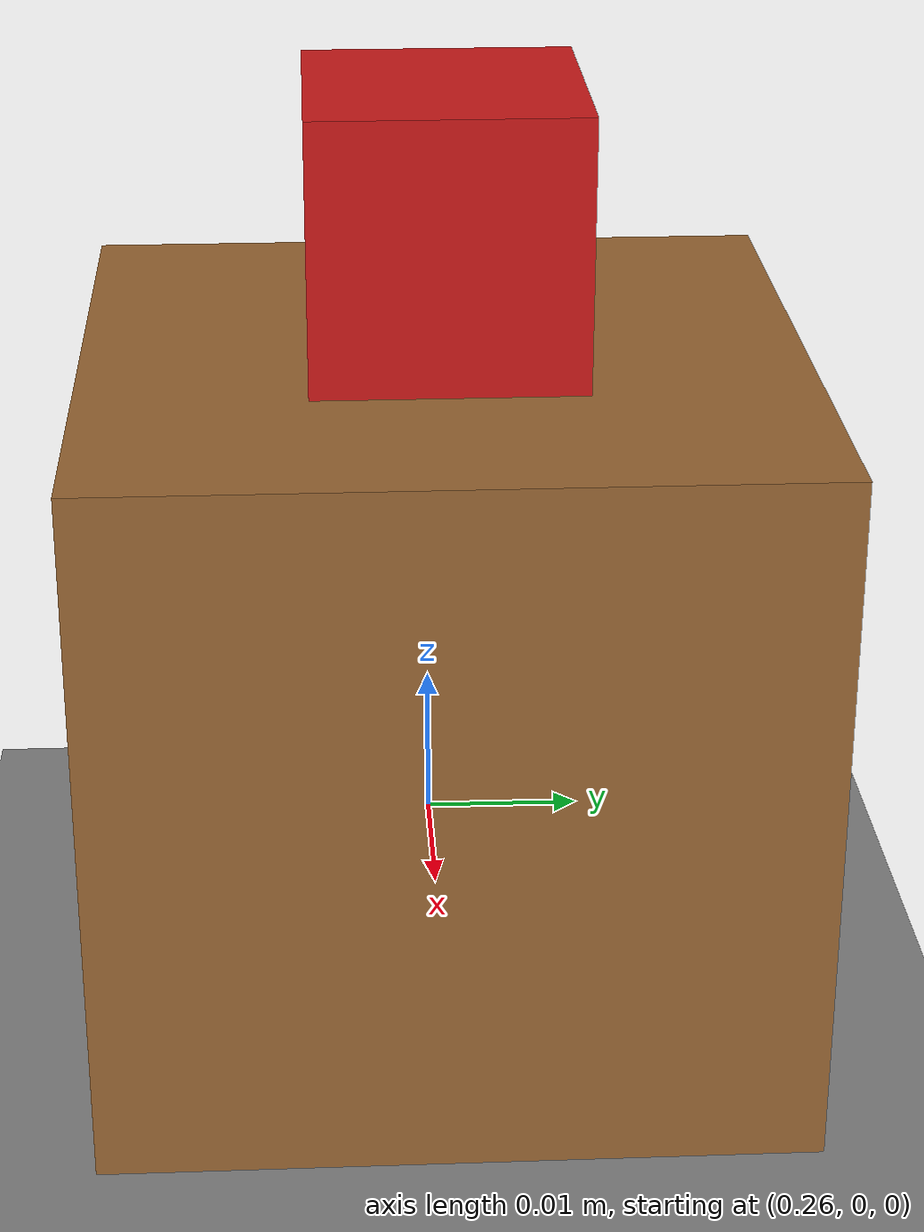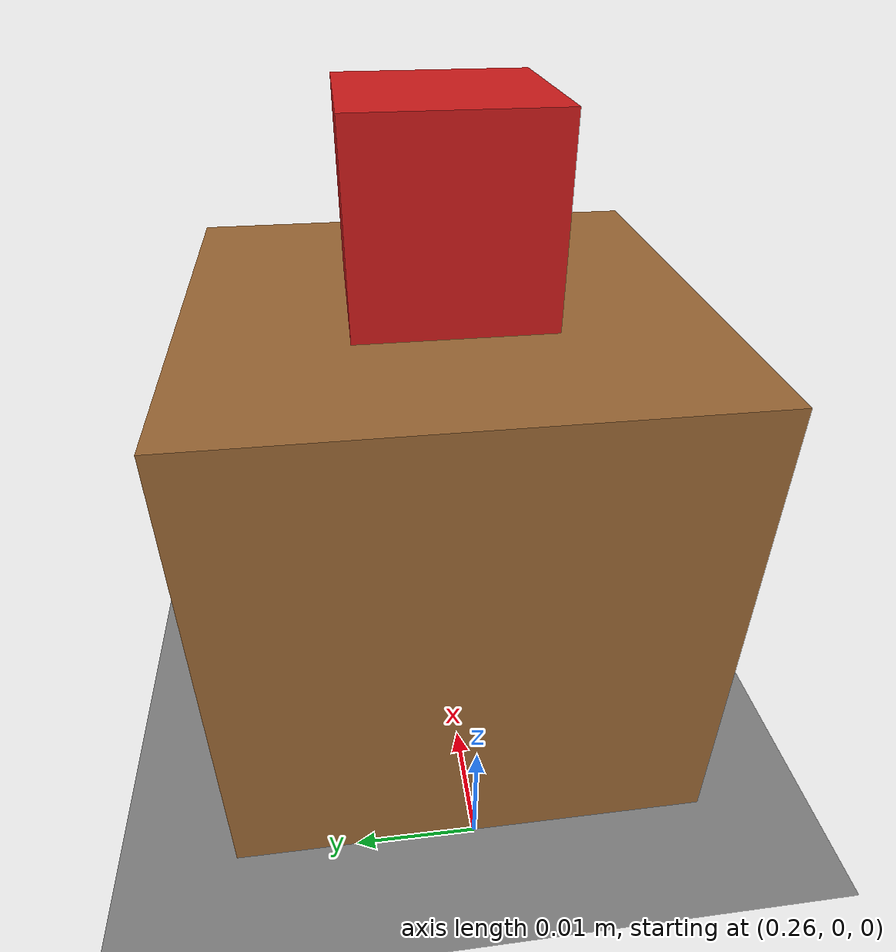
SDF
<?xml version="1.0"?>
<sdf version="1.6">
  <world name="default">
    <physics name="1ms" type="ignored">
      <max_step_size>0.001</max_step_size>
      <real_time_factor>1.0</real_time_factor>
    </physics>

    <gui fullscreen="0">

      <!-- 3D scene -->
      <plugin filename="MinimalScene" name="3D View">
        <gz-gui>
          <title>3D View</title>
          <property type="bool" key="showTitleBar">false</property>
          <property type="string" key="state">docked</property>
        </gz-gui>

        <engine>ogre2</engine>
        <scene>scene</scene>
        <ambient_light>0.4 0.4 0.4</ambient_light>
        <background_color>0.8 0.8 0.8</background_color>
        <camera_pose>0 -0.8 0.6 0 0.5 1.57</camera_pose>
        <camera_clip>
          <near>0.25</near>
          <far>25000</far>
        </camera_clip>
      </plugin>

      <!-- Plugins that add functionality to the scene -->
      <plugin filename="EntityContextMenuPlugin" name="Entity context menu">
        <gz-gui>
          <property key="state" type="string">floating</property>
          <property key="width" type="double">5</property>
          <property key="height" type="double">5</property>
          <property key="showTitleBar" type="bool">false</property>
        </gz-gui>
      </plugin>
      <plugin filename="GzSceneManager" name="Scene Manager">
        <gz-gui>
          <property key="resizable" type="bool">false</property>
          <property key="width" type="double">5</property>
          <property key="height" type="double">5</property>
          <property key="state" type="string">floating</property>
          <property key="showTitleBar" type="bool">false</property>
        </gz-gui>
      </plugin>
      <plugin filename="InteractiveViewControl" name="Interactive view control">
        <gz-gui>
          <property key="resizable" type="bool">false</property>
          <property key="width" type="double">5</property>
          <property key="height" type="double">5</property>
          <property key="state" type="string">floating</property>
          <property key="showTitleBar" type="bool">false</property>
        </gz-gui>
      </plugin>
      <plugin filename="CameraTracking" name="Camera Tracking">
        <gz-gui>
          <property key="resizable" type="bool">false</property>
          <property key="width" type="double">5</property>
          <property key="height" type="double">5</property>
          <property key="state" type="string">floating</property>
          <property key="showTitleBar" type="bool">false</property>
        </gz-gui>
      </plugin>
      <plugin filename="MarkerManager" name="Marker manager">
        <gz-gui>
          <property key="resizable" type="bool">false</property>
          <property key="width" type="double">5</property>
          <property key="height" type="double">5</property>
          <property key="state" type="string">floating</property>
          <property key="showTitleBar" type="bool">false</property>
        </gz-gui>
      </plugin>
      <plugin filename="SelectEntities" name="Select Entities">
        <gz-gui>
          <anchors target="Select entities">
            <line own="right" target="right"/>
            <line own="top" target="top"/>
          </anchors>
          <property key="resizable" type="bool">false</property>
          <property key="width" type="double">5</property>
          <property key="height" type="double">5</property>
          <property key="state" type="string">floating</property>
          <property key="showTitleBar" type="bool">false</property>
        </gz-gui>
      </plugin>
      <plugin filename="VisualizationCapabilities" name="Visualization Capabilities">
        <gz-gui>
          <property key="resizable" type="bool">false</property>
          <property key="width" type="double">5</property>
          <property key="height" type="double">5</property>
          <property key="state" type="string">floating</property>
          <property key="showTitleBar" type="bool">false</property>
        </gz-gui>
      </plugin>

      <plugin filename="Spawn" name="Spawn Entities">
        <gz-gui>
          <anchors target="Select entities">
            <line own="right" target="right"/>
            <line own="top" target="top"/>
          </anchors>
          <property key="resizable" type="bool">false</property>
          <property key="width" type="double">5</property>
          <property key="height" type="double">5</property>
          <property key="state" type="string">floating</property>
          <property key="showTitleBar" type="bool">false</property>
        </gz-gui>
      </plugin>

      <!-- World control -->
      <plugin filename="WorldControl" name="World control">
        <gz-gui>
          <title>World control</title>
          <property type="bool" key="showTitleBar">false</property>
          <property type="bool" key="resizable">false</property>
          <property type="double" key="height">72</property>
          <property type="double" key="width">180</property>
          <property type="double" key="z">1</property>

          <property type="string" key="state">floating</property>
          <anchors target="3D View">
            <line own="left" target="left"/>
            <line own="bottom" target="bottom"/>
          </anchors>
        </gz-gui>

        <play_pause>true</play_pause>
        <step>true</step>
        <start_paused>true</start_paused>
        <use_event>true</use_event>

      </plugin>

      <!-- World statistics -->
      <plugin filename="WorldStats" name="World stats">
        <gz-gui>
          <title>World stats</title>
          <property type="bool" key="showTitleBar">false</property>
          <property type="bool" key="resizable">false</property>
          <property type="double" key="height">110</property>
          <property type="double" key="width">290</property>
          <property type="double" key="z">1</property>

          <property type="string" key="state">floating</property>
          <anchors target="3D View">
            <line own="right" target="right"/>
            <line own="bottom" target="bottom"/>
          </anchors>
        </gz-gui>

        <sim_time>true</sim_time>
        <real_time>true</real_time>
        <real_time_factor>true</real_time_factor>
        <iterations>true</iterations>
      </plugin>

      <!-- Insert simple shapes -->
      <plugin filename="Shapes" name="Shapes">
        <gz-gui>
          <property key="resizable" type="bool">false</property>
          <property key="x" type="double">0</property>
          <property key="y" type="double">0</property>
          <property key="width" type="double">250</property>
          <property key="height" type="double">50</property>
          <property key="state" type="string">floating</property>
          <property key="showTitleBar" type="bool">false</property>
          <property key="cardBackground" type="string">#666666</property>
        </gz-gui>
      </plugin>

      <!-- Insert lights -->
      <plugin filename="Lights" name="Lights">
        <gz-gui>
          <property key="resizable" type="bool">false</property>
          <property key="x" type="double">250</property>
          <property key="y" type="double">0</property>
          <property key="width" type="double">150</property>
          <property key="height" type="double">50</property>
          <property key="state" type="string">floating</property>
          <property key="showTitleBar" type="bool">false</property>
          <property key="cardBackground" type="string">#666666</property>
        </gz-gui>
      </plugin>

      <!-- Translate / rotate -->
      <plugin filename="TransformControl" name="Transform control">
        <gz-gui>
          <property key="resizable" type="bool">false</property>
          <property key="x" type="double">0</property>
          <property key="y" type="double">50</property>
          <property key="width" type="double">250</property>
          <property key="height" type="double">50</property>
          <property key="state" type="string">floating</property>
          <property key="showTitleBar" type="bool">false</property>
          <property key="cardBackground" type="string">#777777</property>
        </gz-gui>
      </plugin>

      <!-- Screenshot -->
      <plugin filename="Screenshot" name="Screenshot">
        <gz-gui>
          <property key="resizable" type="bool">false</property>
          <property key="x" type="double">250</property>
          <property key="y" type="double">50</property>
          <property key="width" type="double">50</property>
          <property key="height" type="double">50</property>
          <property key="state" type="string">floating</property>
          <property key="showTitleBar" type="bool">false</property>
          <property key="cardBackground" type="string">#777777</property>
        </gz-gui>
      </plugin>

      <!-- Video recorder -->
      <plugin filename="VideoRecorder" name="VideoRecorder">
        <gz-gui>
          <property key="resizable" type="bool">false</property>
          <property key="x" type="double">300</property>
          <property key="y" type="double">50</property>
          <property key="width" type="double">50</property>
          <property key="height" type="double">50</property>
          <property key="state" type="string">floating</property>
          <property key="showTitleBar" type="bool">false</property>
          <property key="cardBackground" type="string">#777777</property>
        </gz-gui>

        <record_video>
          <use_sim_time>true</use_sim_time>
          <lockstep>true</lockstep>
          <bitrate>4000000</bitrate>
        </record_video>
      </plugin>

      <!-- Inspector -->
      <plugin filename="ComponentInspector" name="Component inspector">
        <gz-gui>
          <property type="string" key="state">docked_collapsed</property>
        </gz-gui>
      </plugin>

      <!-- Entity tree -->
      <plugin filename="EntityTree" name="Entity tree">
        <gz-gui>
          <property type="string" key="state">docked_collapsed</property>
        </gz-gui>
      </plugin>

      <!-- View angle -->
      <plugin filename="ViewAngle" name="View angle">
        <gz-gui>
          <property type="string" key="state">docked_collapsed</property>
        </gz-gui>
      </plugin>

    </gui>

    <gravity>0 0 -9.81</gravity>

    <light type="directional" name="sun">
      <cast_shadows>true</cast_shadows>
      <pose>0 0 10 0 0 0</pose>
      <diffuse>0.8 0.8 0.8 1</diffuse>
      <specular>0.2 0.2 0.2 1</specular>
      <attenuation>
        <range>1000</range>
        <constant>0.9</constant>
        <linear>0.01</linear>
        <quadratic>0.001</quadratic>
      </attenuation>
      <direction>-0.5 0.1 -0.9</direction>
    </light>

    <model name="ground_plane">
      <static>true</static>
      <link name="link">
        <collision name="collision">
          <geometry>
            <plane>
              <normal>0 0 1</normal>
              <size>10 10</size>
            </plane>
          </geometry>
          <surface>
            <friction>
              <ode>
                <mu>0.8</mu>
                <mu2>0.8</mu2>
              </ode>
            </friction>
          </surface>
        </collision>
        <visual name="visual">
          <geometry>
            <plane>
              <normal>0 0 1</normal>
              <size>10 10</size>
            </plane>
          </geometry>
          <material>
            <ambient>0.5 0.5 0.5 1</ambient>
            <diffuse>0.5 0.5 0.5 1</diffuse>
          </material>
        </visual>
      </link>
    </model>

    <!-- Pedestal: 40mm static box, top surface at z=0.04 -->
    <model name="pedestal">
      <static>true</static>
      <pose>0.28 0.0 0.02 0 0 0</pose>
      <link name="link">
        <collision name="collision">
          <geometry>
            <box><size>0.04 0.04 0.04</size></box>
          </geometry>
        </collision>
        <visual name="visual">
          <geometry>
            <box><size>0.04 0.04 0.04</size></box>
          </geometry>
          <material>
            <ambient>0.6 0.4 0.2 1</ambient>
            <diffuse>0.6 0.4 0.2 1</diffuse>
          </material>
        </visual>
      </link>
    </model>

    <model name="cube">
      <pose>0.28 0.0 0.0475 0 0 0</pose>
      <link name="link">
        <inertial>
          <mass>0.005</mass>
          <inertia>
            <ixx>1.875e-7</ixx>
            <iyy>1.875e-7</iyy>
            <izz>1.875e-7</izz>
            <ixy>0</ixy>
            <ixz>0</ixz>
            <iyz>0</iyz>
          </inertia>
        </inertial>
        <collision name="collision">
          <geometry>
            <box><size>0.015 0.015 0.015</size></box>
          </geometry>
          <surface>
            <friction>
              <ode>
                <mu>0.8</mu>
                <mu2>0.8</mu2>
              </ode>
            </friction>
            <contact>
              <ode>
                <min_depth>0.0005</min_depth>
                <max_vel>0.01</max_vel>
              </ode>
            </contact>
          </surface>
        </collision>
        <visual name="visual">
          <geometry>
            <box><size>0.015 0.015 0.015</size></box>
          </geometry>
          <material>
            <ambient>0.8 0.1 0.1 1</ambient>
            <diffuse>0.8 0.1 0.1 1</diffuse>
          </material>
        </visual>
      </link>
      <plugin filename="gz-sim-detachable-joint-system" name="gz::sim::systems::DetachableJoint">
        <parent_link>link</parent_link>
        <child_model>mk3</child_model>
        <child_link>link_6</child_link>
        <attach_topic>/model/cube/detachable_joint/attach</attach_topic>
        <detach_topic>/model/cube/detachable_joint/detach</detach_topic>
      </plugin>
    </model>

  </world>
</sdf>
